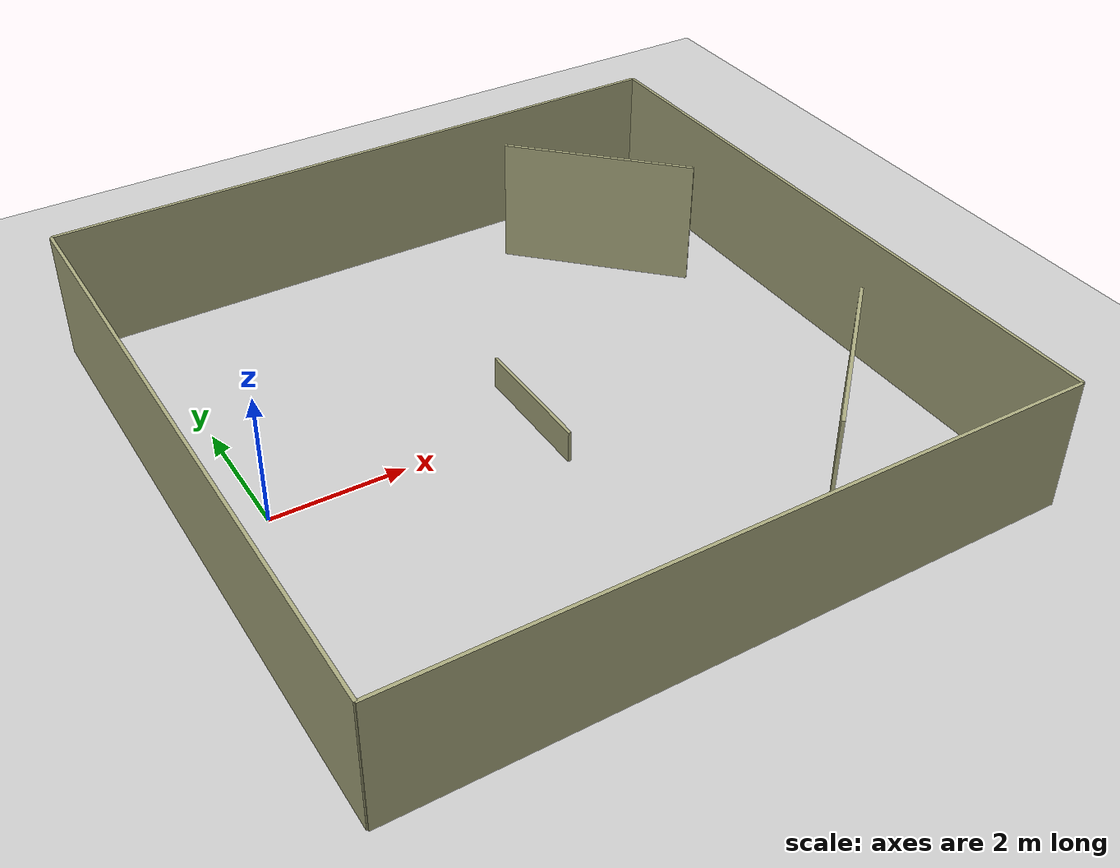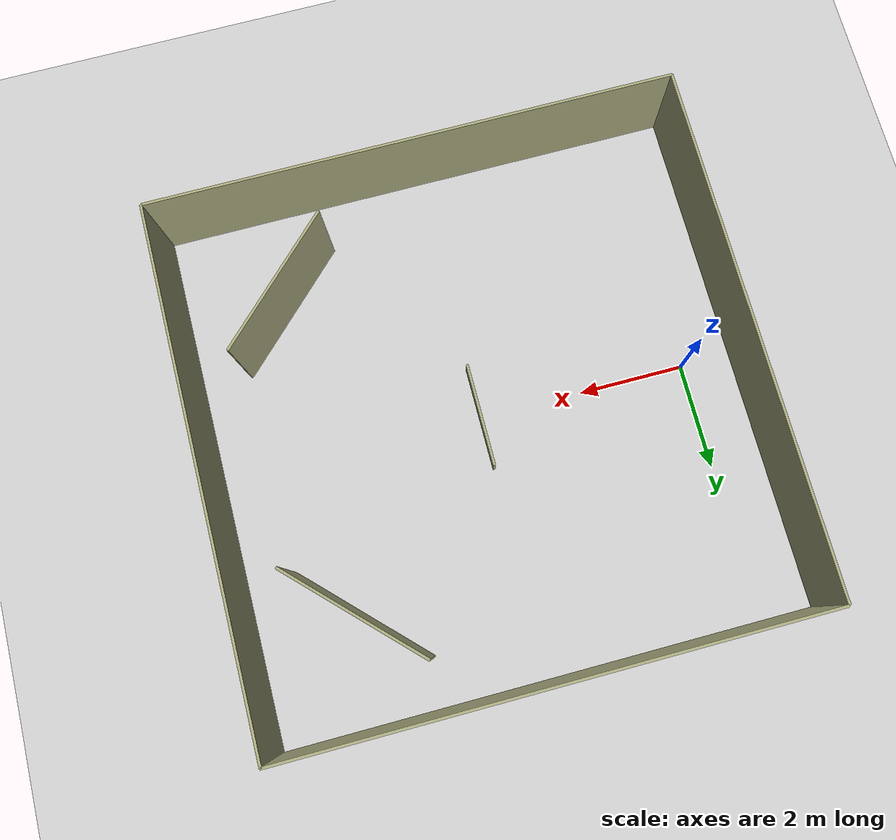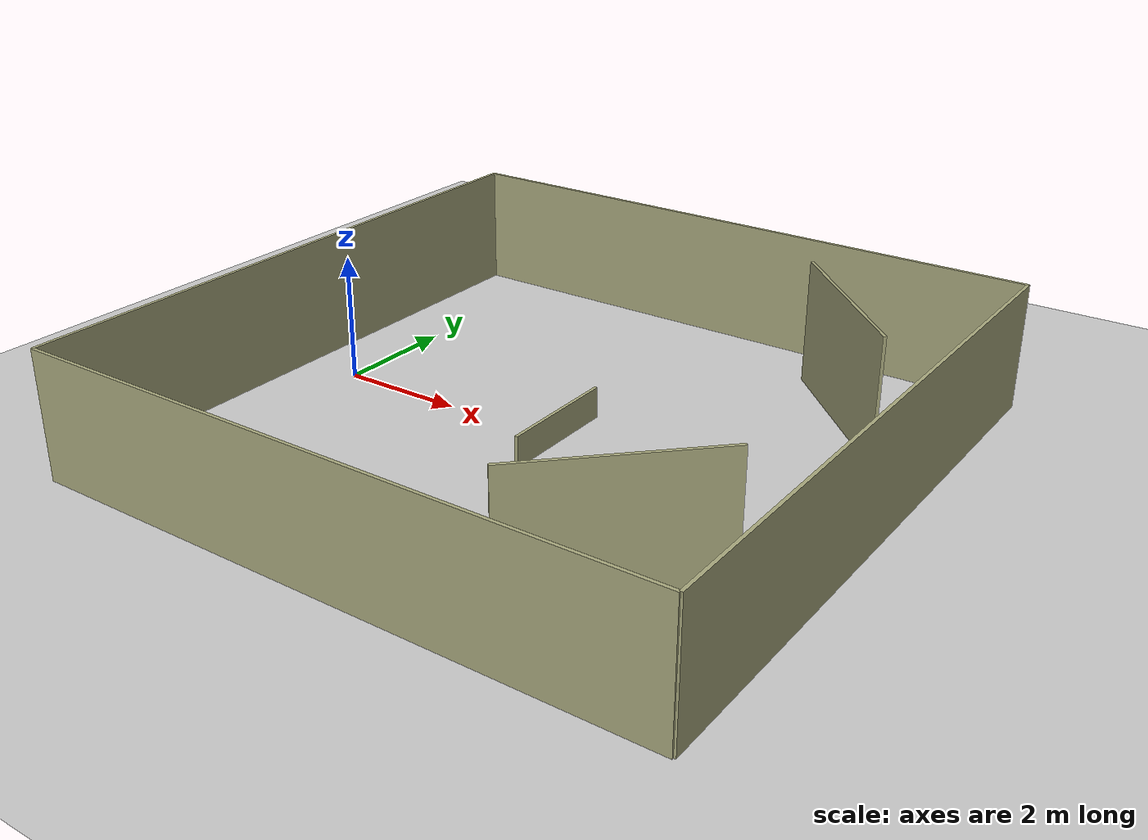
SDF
<?xml version="1.0" ?>

<sdf version="1.5">
  <!-- We use a custom world for the robot so that the camera angle is launched correctly -->
  <world name="diff_drive_world">

    <!-- Add a ground plane -->
    <include>
        <uri>model://ground_plane</uri>
        <material>
            <script>
                <uri>file://media/materials/scripts/gazebo.material</uri>
            </script>
        </material>
    </include>

    <!-- Global light source -->
    <include>
      <uri>model://sun</uri>
    </include>

    <!-- factory -->
    <include>
      <uri>model://simu_map</uri>
      <pose>4 0 0 0 0 0</pose>
    </include>

    <!-- Apartment Walls -->

    <!-- Human -->

    <!-- Set up the solver used for simulation -->
    <physics name="ode_70iters" type="ode">
      <real_time_update_rate>1500</real_time_update_rate>
      <ode>
        <solver>
          <type>quick</type>
          <iters>70</iters>
        </solver>
      </ode>
    </physics>

  </world>
</sdf>

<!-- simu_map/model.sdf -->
<sdf version='1.6'>
  <model name='walls'>
    <pose frame=''>0 0 0 0 -0 0</pose>

    <link name='Wall_48'>
      <collision name='Wall_48_Collision'>
        <geometry>
          <box>
            <size>10.0001 0.05 2.0</size>
          </box>
        </geometry>
        <pose frame=''>0 0 1.0 0 -0 0</pose>
      </collision>
      <visual name='Wall_48_Visual'>
        <pose frame=''>0 0 1.0 0 -0 0</pose>
        <geometry>
          <box>
            <size>10.00001 0.05 2.0</size>
          </box>
        </geometry>
        <material>
          <script>
            <uri>file://media/materials/scripts/gazebo.material</uri>
            <name>Gazebo/Grey</name>
          </script>
          <ambient>0.666667 0.666667 0.498039 1</ambient>
        </material>
      </visual>
      <pose frame=''>-5.0 0 0 0 -0 1.57215</pose>
    </link>

    <link name='Wall_49'>
      <collision name='Wall_49_Collision'>
        <geometry>
          <box>
            <size>10.00001 0.05 2.0</size>
          </box>
        </geometry>
        <pose frame=''>0 0 1.0 0 -0 0</pose>
      </collision>
      <visual name='Wall_49_Visual'>
        <pose frame=''>0 0 1.0 0 -0 0</pose>
        <geometry>
          <box>
            <size>10.00001 0.05 2.0</size>
          </box>
        </geometry>
        <material>
          <script>
            <uri>file://media/materials/scripts/gazebo.material</uri>
            <name>Gazebo/Grey</name>
          </script>
          <ambient>0.666667 0.666667 0.498039 1</ambient>
        </material>
      </visual>
      <pose frame=''>5.0 0 0 0 -0 1.57215</pose>
    </link>

    <link name='Wall_50'>
      <collision name='Wall_50_Collision'>
        <geometry>
          <box>
            <size>10.00001 0.05 2.0</size>
          </box>
        </geometry>
        <pose frame=''>0 0 1.0 0 -0 0</pose>
      </collision>
      <visual name='Wall_50_Visual'>
        <pose frame=''>0 0 1.0 0 -0 0</pose>
        <geometry>
          <box>
            <size>10.00001 0.05 2.0</size>
          </box>
        </geometry>
        <material>
          <script>
            <uri>file://media/materials/scripts/gazebo.material</uri>
            <name>Gazebo/Grey</name>
          </script>
          <ambient>0.666667 0.666667 0.498039 1</ambient>
        </material>
      </visual>
      <pose frame=''>0 5.0 0 0 -0 0</pose>
    </link>

    <link name='Wall_51'>
      <collision name='Wall_51_Collision'>
        <geometry>
          <box>
            <size>10.00001 0.05 2.0</size>
          </box>
        </geometry>
        <pose frame=''>0 0 1.0 0 -0 0</pose>
      </collision>
      <visual name='Wall_51_Visual'>
        <pose frame=''>0 0 1.0 0 -0 0</pose>
        <geometry>
          <box>
            <size>10.00001 0.05 2.0</size>
          </box>
        </geometry>
        <material>
          <script>
            <uri>file://media/materials/scripts/gazebo.material</uri>
            <name>Gazebo/Grey</name>
          </script>
          <ambient>0.666667 0.666667 0.498039 1</ambient>
        </material>
      </visual>
      <pose frame=''>0 -5.0 0 0 -0 0</pose>
    </link>

    <link name='Wall_52'>
      <collision name='Wall_52_Collision'>
        <geometry>
          <box>
            <size>3.00001 0.05 2.0</size>
          </box>
        </geometry>
        <pose frame=''>0 0 1.0 0 -0 0</pose>
      </collision>
      <visual name='Wall_52_Visual'>
        <pose frame=''>0 0 1.0 0 -0 0</pose>
        <geometry>
          <box>
            <size>3.00001 0.05 2.0</size>
          </box>
        </geometry>
        <material>
          <script>
            <uri>file://media/materials/scripts/gazebo.material</uri>
            <name>Gazebo/Grey</name>
          </script>
          <ambient>0.666667 0.666667 0.498039 1</ambient>
        </material>
      </visual>
      <pose frame=''>3.0 -3.0 0 0 -0 0.785</pose>
    </link>

    <link name='Wall_53'>
      <collision name='Wall_53_Collision'>
        <geometry>
          <box>
            <size>3.00001 0.05 2.0</size>
          </box>
        </geometry>
        <pose frame=''>0 0 1.0 0 -0 0</pose>
      </collision>
      <visual name='Wall_53_Visual'>
        <pose frame=''>0 0 1.0 0 -0 0</pose>
        <geometry>
          <box>
            <size>3.00001 0.05 2.0</size>
          </box>
        </geometry>
        <material>
          <script>
            <uri>file://media/materials/scripts/gazebo.material</uri>
            <name>Gazebo/Grey</name>
          </script>
          <ambient>0.666667 0.666667 0.498039 1</ambient>
        </material>
      </visual>
      <pose frame=''>3.0 3.0 0 0 -0 -0.785</pose>
    </link>

    <!--U Obstacle-->
    <link name='box_54'>
      <collision name='Wall_54_Collision'>
        <geometry>
          <box>
            <size>1.00001 0.05 0.5</size>
          </box>
        </geometry>
        <pose frame=''>0 0 0.25 0 -0 0</pose>
      </collision>
      <visual name='Wall_54_Visual'>
        <pose frame=''>0 0 0.25 0 -0 0</pose>
        <geometry>
          <box>
            <size>2.00001 0.05 0.5</size>
          </box>
        </geometry>
        <material>
          <script>
            <uri>file://media/materials/scripts/gazebo.material</uri>
            <name>Gazebo/Grey</name>
          </script>
          <ambient>0.666667 0.666667 0.498039 1</ambient>
        </material>
      </visual>
      <pose frame=''>0 0 0 0 -0 1.57215</pose>
    </link>

    <!--U Obstacle-->

    <!--G Obstacle-->
    <!--G Obstacle-->

    <static>1</static>
  </model>
</sdf>
